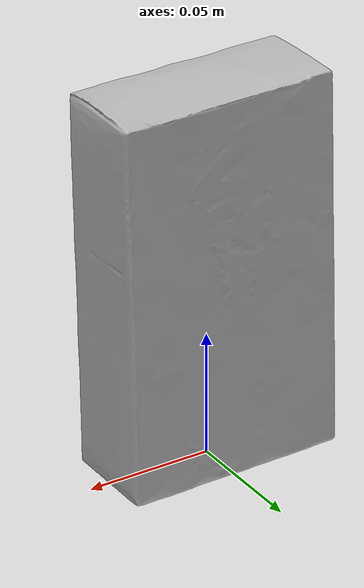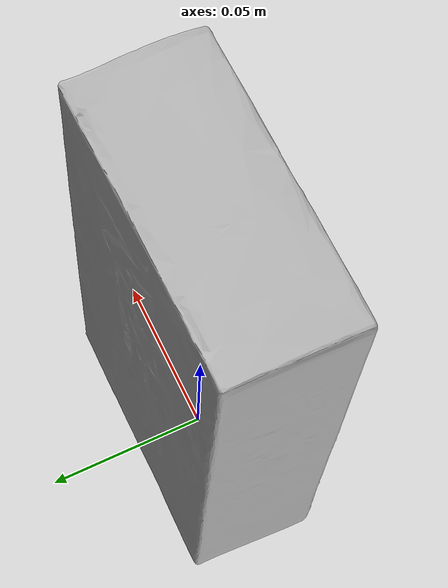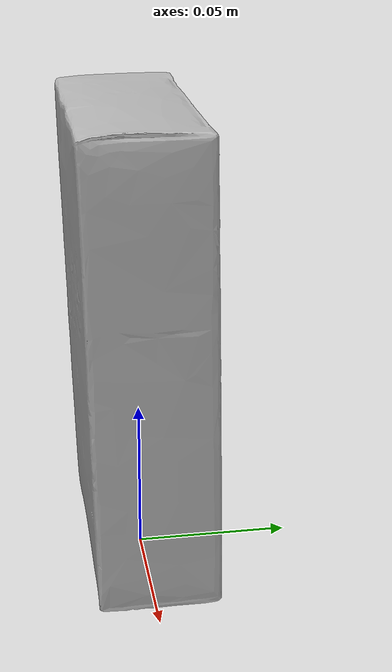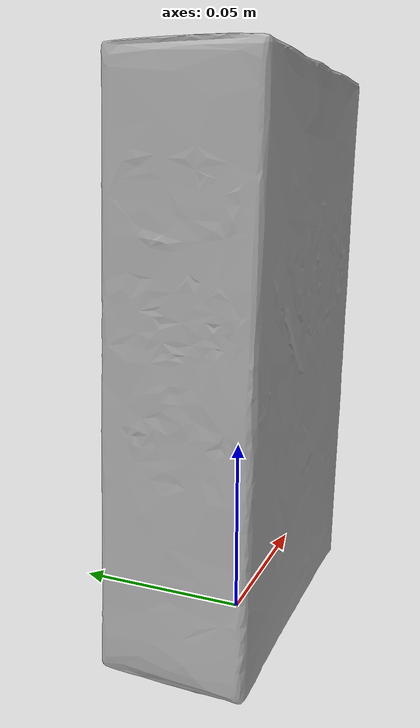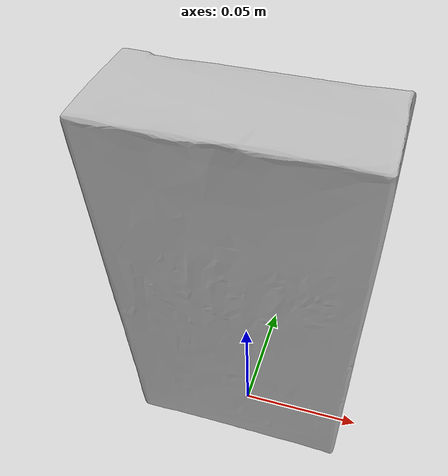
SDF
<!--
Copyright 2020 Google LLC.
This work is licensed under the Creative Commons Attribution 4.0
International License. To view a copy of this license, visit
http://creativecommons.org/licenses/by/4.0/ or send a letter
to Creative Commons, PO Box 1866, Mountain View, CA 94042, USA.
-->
<?xml version="1.0" ?>
<sdf version="1.6">
  <model name="Nips_Hard_Candy_Rich_Creamy_Butter_Rum_4_oz_1133_g">
    <link name="link_0">
      <visual name="visual">
        <geometry>
          <mesh>
            <uri>model://Nips_Hard_Candy_Rich_Creamy_Butter_Rum_4_oz_1133_g/meshes/model.obj</uri>
          </mesh>
        </geometry>
      </visual>
      <collision name="collision_0">
        <geometry>
          <mesh>
            <uri>model://Nips_Hard_Candy_Rich_Creamy_Butter_Rum_4_oz_1133_g/meshes/model.obj</uri>
          </mesh>
        </geometry>
      </collision>
    </link>
  </model>
</sdf>
